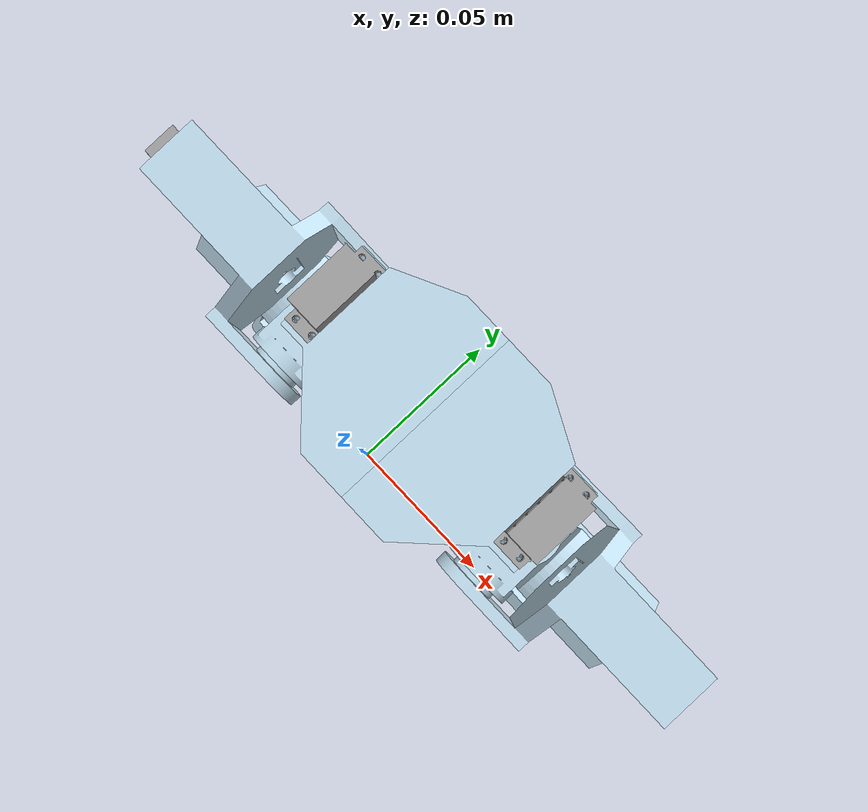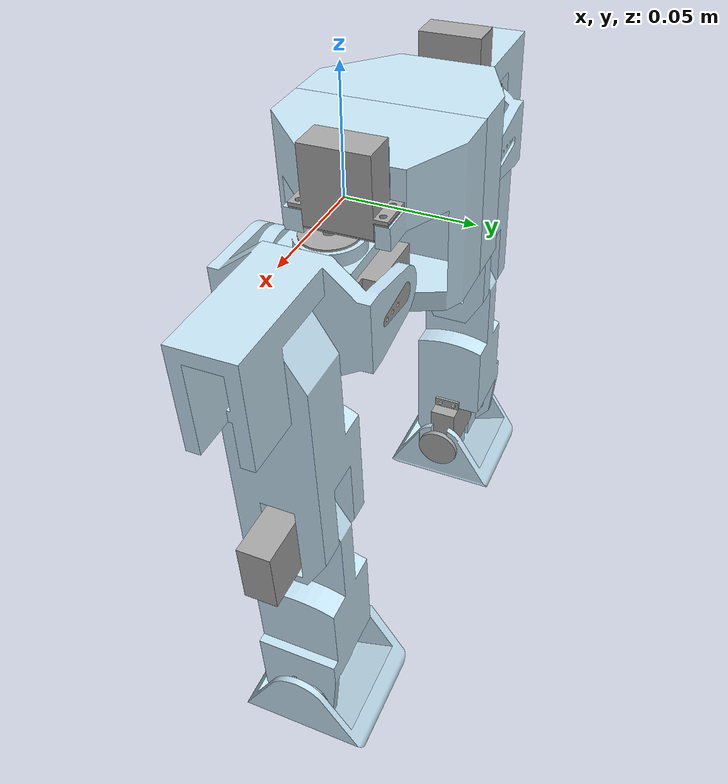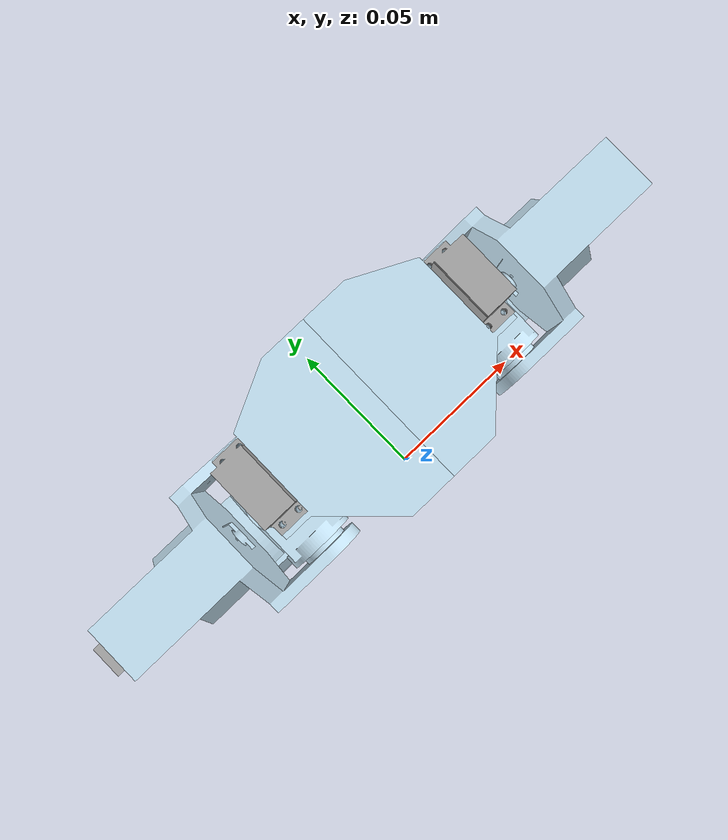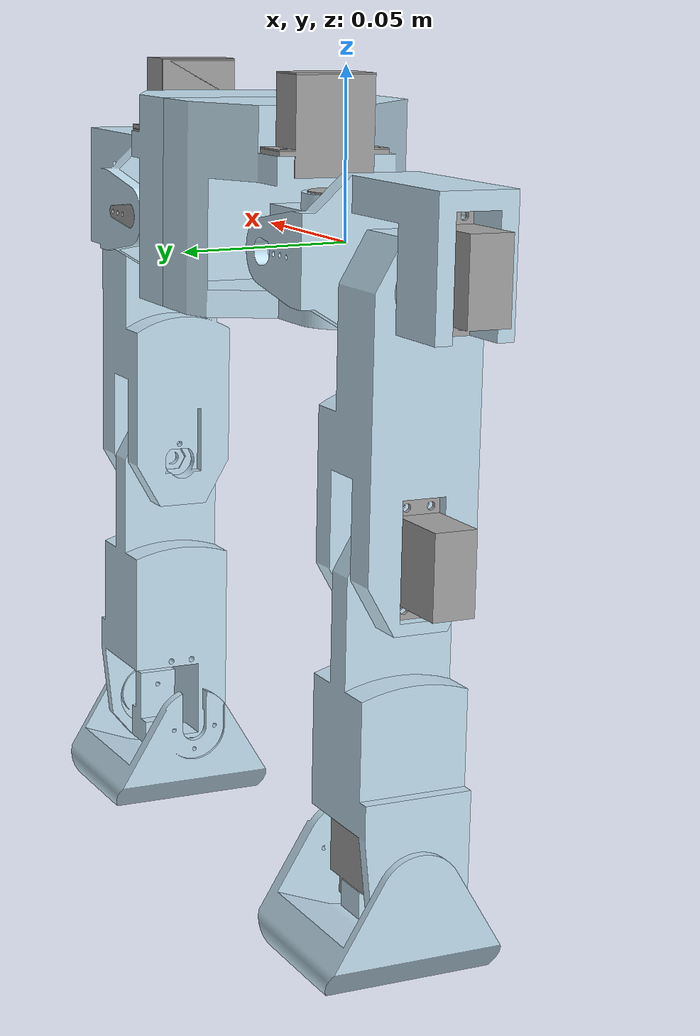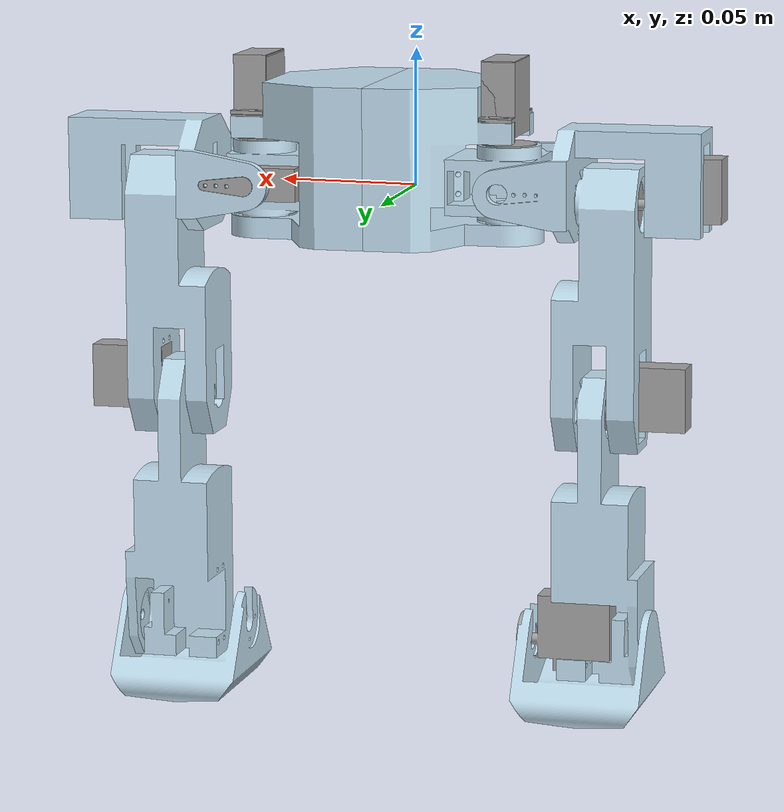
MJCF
<?xml version="1.0" ?>
<!-- Generated using onshape-to-robot -->
<!-- Onshape https://cad.onshape.com/documents/1086eec806492e655aee3d36/w/7ead37efbdf3ca071e6ea4b2/e/281eb8c3a9d8c66f38369e15 -->
<mujoco model="desc">
  <compiler angle="radian" meshdir="assets" autolimits="true"/>
  <default>
    <default class="desc">
      <joint frictionloss="0.1" armature="0.005"/>
      <position kp="50" dampratio="1"/>
      <default class="visual">
        <geom type="mesh" contype="0" conaffinity="0" group="2"/>
      </default>
      <default class="collision">
        <geom group="3"/>
      </default>
    </default>
  </default>
  <worldbody>
    <!-- Link hor_rot_body_joint -->
    <body name="hor_rot_body_joint" pos="0 0 0" quat="1 0 0 0" childclass="desc">
      <freejoint name="hor_rot_body_joint_freejoint"/>
      <inertial pos="0.00593595 0.0210036 0.0166446" mass="0.205" fullinertia="0.000144034 0.000149785 0.000149433 -7.314e-09 5.7349e-08 -1.71145e-06"/>
      <!-- Part hor_rot_body_joint -->
      <geom type="mesh" class="visual" pos="-0.00193299 0.0210422 -0.0160235" quat="0.999928 0.010544 0.00562891 -0.00110178" mesh="hor_rot_body_joint" material="hor_rot_body_joint_material"/>
      <geom type="mesh" class="collision" pos="-0.00193299 0.0210422 -0.0160235" quat="0.999928 0.010544 0.00562891 -0.00110178" mesh="hor_rot_body_joint" material="hor_rot_body_joint_material"/>
      <!-- Part servo_1_mirrored -->
      <geom type="mesh" class="visual" pos="0.0130647 0.0209163 -0.0162947" quat="0.00562891 -0.00110178 -0.999928 -0.010544" mesh="servo_1_mirrored" material="servo_1_mirrored_material"/>
      <geom type="mesh" class="collision" pos="0.0130647 0.0209163 -0.0162947" quat="0.00562891 -0.00110178 -0.999928 -0.010544" mesh="servo_1_mirrored" material="servo_1_mirrored_material"/>
      <!-- Part hor_rot_body_joint_mirrored -->
      <geom type="mesh" class="visual" pos="0.013066 0.0210109 -0.0161927" quat="0.00562891 -0.00110178 -0.999928 -0.010544" mesh="hor_rot_body_joint_mirrored" material="hor_rot_body_joint_mirrored_material"/>
      <geom type="mesh" class="collision" pos="0.013066 0.0210109 -0.0161927" quat="0.00562891 -0.00110178 -0.999928 -0.010544" mesh="hor_rot_body_joint_mirrored" material="hor_rot_body_joint_mirrored_material"/>
      <!-- Part servo_1 -->
      <geom type="mesh" class="visual" pos="-0.00193433 0.0209475 -0.0161255" quat="0.999928 0.010544 0.00562891 -0.00110178" mesh="servo_1" material="servo_1_material"/>
      <geom type="mesh" class="collision" pos="-0.00193433 0.0209475 -0.0161255" quat="0.999928 0.010544 0.00562891 -0.00110178" mesh="servo_1" material="servo_1_material"/>
      <!-- Link lat_hip_rotor -->
      <body name="lat_hip_rotor" pos="0.0511752 0.0201519 0.0157702" quat="0.999928 0.010544 0.00562891 -0.00110178">
        <!-- Joint from hor_rot_body_joint to lat_hip_rotor -->
        <joint axis="0 0 1" name="hip_lat_hip_rot" type="hinge"/>
        <inertial pos="-0.00428697 -0.00382409 -0.0126357" mass="0.0155303" fullinertia="2.37909e-06 2.50246e-06 2.59945e-06 -8.0327e-08 3.5083e-08 3.2124e-08"/>
        <!-- Part lat_hip_rotor -->
        <geom type="mesh" class="visual" pos="-0.0527479 -8.95e-10 -0.0321" quat="1 -0 -0 8.48e-09" mesh="lat_hip_rotor" material="lat_hip_rotor_material"/>
        <geom type="mesh" class="collision" pos="-0.0527479 -8.95e-10 -0.0321" quat="1 -0 -0 8.48e-09" mesh="lat_hip_rotor" material="lat_hip_rotor_material"/>
        <!-- Part servo_2 -->
        <geom type="mesh" class="visual" pos="-0.0527479 -8.95e-10 -0.0321" quat="1 0 -0 8.48e-09" mesh="servo_2" material="servo_2_material"/>
        <geom type="mesh" class="collision" pos="-0.0527479 -8.95e-10 -0.0321" quat="1 0 -0 8.48e-09" mesh="servo_2" material="servo_2_material"/>
        <!-- Part mm_lat_hip_rotor -->
        <geom type="mesh" class="visual" pos="-0.0528345 4.99991e-05 -0.0321" quat="1 -0 -0 8.48e-09" mesh="mm_lat_hip_rotor" material="mm_lat_hip_rotor_material"/>
        <geom type="mesh" class="collision" pos="-0.0528345 4.99991e-05 -0.0321" quat="1 -0 -0 8.48e-09" mesh="mm_lat_hip_rotor" material="mm_lat_hip_rotor_material"/>
        <!-- Link vert_rot_hip -->
        <body name="vert_rot_hip" pos="0.00109071 0.023 -0.0121" quat="0.707107 -0.707107 3.809e-08 5.0083e-08">
          <!-- Joint from lat_hip_rotor to vert_rot_hip -->
          <joint axis="0 0 1" name="lat_hip_rot_vert_hip_rot" type="hinge"/>
          <inertial pos="0.0334167 -0.0052005 -0.0248316" mass="0.0358461" fullinertia="1.1549e-05 2.28216e-05 1.99117e-05 1.71255e-06 -1.85099e-06 3.32353e-07"/>
          <!-- Part mm_vert_rot_hip -->
          <geom type="mesh" class="visual" pos="-0.0538386 0.02 -0.023" quat="0.707107 0.707107 -0 -0" mesh="mm_vert_rot_hip" material="mm_vert_rot_hip_material"/>
          <geom type="mesh" class="collision" pos="-0.0538386 0.02 -0.023" quat="0.707107 0.707107 -0 -0" mesh="mm_vert_rot_hip" material="mm_vert_rot_hip_material"/>
          <!-- Part vert_rot_hip -->
          <geom type="mesh" class="visual" pos="-0.0538386 0.02 -0.023" quat="0.707107 0.707107 -0 0" mesh="vert_rot_hip" material="vert_rot_hip_material"/>
          <geom type="mesh" class="collision" pos="-0.0538386 0.02 -0.023" quat="0.707107 0.707107 -0 0" mesh="vert_rot_hip" material="vert_rot_hip_material"/>
          <!-- Part servo_3 -->
          <geom type="mesh" class="visual" pos="-0.0538386 0.0199038 -0.023" quat="0.707107 0.707107 -0 0" mesh="servo_3" material="servo_3_material"/>
          <geom type="mesh" class="collision" pos="-0.0538386 0.0199038 -0.023" quat="0.707107 0.707107 -0 0" mesh="servo_3" material="servo_3_material"/>
          <!-- Link upper_leg -->
          <body name="upper_leg" pos="0.043 0.0054232 -0.023" quat="0 -0.707107 0 -0.707107">
            <!-- Joint from vert_rot_hip to upper_leg -->
            <joint axis="0 0 1" name="vert_hip_rot_upper_leg" type="hinge"/>
            <inertial pos="-2.65264e-06 -0.034094 -0.00876669" mass="0.0699906" fullinertia="4.88668e-05 1.08625e-05 4.94636e-05 -4.563e-09 -9.7e-11 -2.76551e-06"/>
            <!-- Part mm_upper_leg -->
            <geom type="mesh" class="visual" pos="-0.0124979 -0.00726417 -0.0968386" quat="0.182982 -0.683021 -0.182982 -0.683021" mesh="mm_upper_leg" material="mm_upper_leg_material"/>
            <geom type="mesh" class="collision" pos="-0.0124979 -0.00726417 -0.0968386" quat="0.182982 -0.683021 -0.182982 -0.683021" mesh="mm_upper_leg" material="mm_upper_leg_material"/>
            <!-- Part upper_leg -->
            <geom type="mesh" class="visual" pos="-1.32164e-06 -0.0144806 -0.0968386" quat="0.499977 -0.500023 -0.499977 -0.500023" mesh="upper_leg" material="upper_leg_material"/>
            <geom type="mesh" class="collision" pos="-1.32164e-06 -0.0144806 -0.0968386" quat="0.499977 -0.500023 -0.499977 -0.500023" mesh="upper_leg" material="upper_leg_material"/>
            <!-- Part servo_4 -->
            <geom type="mesh" class="visual" pos="-1.30289e-06 -0.0142752 -0.0968386" quat="0.499977 -0.500023 -0.499977 -0.500023" mesh="servo_4" material="servo_4_material"/>
            <geom type="mesh" class="collision" pos="-1.30289e-06 -0.0142752 -0.0968386" quat="0.499977 -0.500023 -0.499977 -0.500023" mesh="servo_4" material="servo_4_material"/>
            <!-- Link lower_leg -->
            <body name="lower_leg" pos="-6.82649e-06 -0.0747946 -0.012" quat="1 0 0 -4.56349e-05">
              <!-- Joint from upper_leg to lower_leg -->
              <joint axis="0 0 1" name="upper_leg_lower_leg" type="hinge"/>
              <inertial pos="-0.00131472 -0.0494415 0.00184604" mass="0.0690184" fullinertia="4.62636e-05 9.92145e-06 4.72727e-05 -2.78149e-06 -4.954e-08 1.88075e-06"/>
              <!-- Part lower_leg -->
              <geom type="mesh" class="visual" pos="0 0.0605194 -0.0848386" quat="0.5 -0.5 -0.5 -0.5" mesh="lower_leg" material="lower_leg_material"/>
              <geom type="mesh" class="collision" pos="0 0.0605194 -0.0848386" quat="0.5 -0.5 -0.5 -0.5" mesh="lower_leg" material="lower_leg_material"/>
              <!-- Part mm_lower_leg -->
              <geom type="mesh" class="visual" pos="-0.0521082 0.0300847 -0.0847386" quat="0.683013 -0.183013 -0.683013 -0.183013" mesh="mm_lower_leg" material="mm_lower_leg_material"/>
              <geom type="mesh" class="collision" pos="-0.0521082 0.0300847 -0.0847386" quat="0.683013 -0.183013 -0.683013 -0.183013" mesh="mm_lower_leg" material="mm_lower_leg_material"/>
              <!-- Part servo_5 -->
              <geom type="mesh" class="visual" pos="0 0.0605239 -0.0845886" quat="0.5 -0.5 -0.5 -0.5" mesh="servo_5" material="servo_5_material"/>
              <geom type="mesh" class="collision" pos="0 0.0605239 -0.0845886" quat="0.5 -0.5 -0.5 -0.5" mesh="servo_5" material="servo_5_material"/>
              <!-- Link foot -->
              <body name="foot" pos="0 -0.085 0.0175" quat="0 1 -0 0">
                <!-- Joint from lower_leg to foot -->
                <joint axis="0 0 1" name="lower_leg_foot" type="hinge"/>
                <inertial pos="-6.30262e-05 0.016939 0.0187992" mass="0.0355652" fullinertia="8.98359e-06 1.48185e-05 9.36648e-06 -1.0674e-08 -1.227e-09 -1.8862e-07"/>
                <!-- Part foot -->
                <geom type="mesh" class="visual" pos="-0 -0.145519 0.102339" quat="0.5 0.5 0.5 -0.5" mesh="foot" material="foot_material"/>
                <geom type="mesh" class="collision" pos="-0 -0.145519 0.102339" quat="0.5 0.5 0.5 -0.5" mesh="foot" material="foot_material"/>
              </body>
            </body>
          </body>
        </body>
      </body>
      <!-- Link lat_hip_rotor_mirrored -->
      <body name="lat_hip_rotor_mirrored" pos="-0.0393146 0.0203405 0.0167911" quat="0.00562891 -0.00110177 -0.999928 -0.010544">
        <!-- Joint from hor_rot_body_joint to lat_hip_rotor_mirrored -->
        <joint axis="0 0 1" name="r_hip_lat_rot" type="hinge"/>
        <inertial pos="-0.00447435 -0.00399691 0.0122043" mass="0.0148671" fullinertia="2.29632e-06 2.41786e-06 2.56995e-06 -6.9053e-08 -6.94e-09 -6.168e-09"/>
        <!-- Part servo_2_mirrored -->
        <geom type="mesh" class="visual" pos="-0.0527479 0 0.0321" quat="1 0 0 -0" mesh="servo_2_mirrored" material="servo_2_mirrored_material"/>
        <geom type="mesh" class="collision" pos="-0.0527479 0 0.0321" quat="1 0 0 -0" mesh="servo_2_mirrored" material="servo_2_mirrored_material"/>
        <!-- Part lat_hip_rotor_mirrored -->
        <geom type="mesh" class="visual" pos="-0.0527479 0 0.0321" quat="1 0 0 -0" mesh="lat_hip_rotor_mirrored" material="lat_hip_rotor_mirrored_material"/>
        <geom type="mesh" class="collision" pos="-0.0527479 0 0.0321" quat="1 0 0 -0" mesh="lat_hip_rotor_mirrored" material="lat_hip_rotor_mirrored_material"/>
        <!-- Link vert_rot_hip_mirrored -->
        <body name="vert_rot_hip_mirrored" pos="0.00109071 0.025 0.0121" quat="0.707107 -0.707107 4.4087e-08 4.4087e-08">
          <!-- Joint from lat_hip_rotor_mirrored to vert_rot_hip_mirrored -->
          <joint axis="0 0 1" name="r_hip_vert_hip_rot" type="hinge"/>
          <inertial pos="0.0339266 0.00527985 -0.0264822" mass="0.0353074" fullinertia="1.12425e-05 2.19192e-05 1.92796e-05 -1.6175e-06 -1.43257e-06 -2.67236e-07"/>
          <!-- Part servo_1_mirrored_2 -->
          <geom type="mesh" class="visual" pos="0.0105 -0.00551938 -0.0777479" quat="0.707107 0 -0.707107 -0" mesh="servo_1_mirrored" material="servo_1_mirrored_material"/>
          <geom type="mesh" class="collision" pos="0.0105 -0.00551938 -0.0777479" quat="0.707107 0 -0.707107 -0" mesh="servo_1_mirrored" material="servo_1_mirrored_material"/>
          <!-- Part vert_rot_hip_mirrored -->
          <geom type="mesh" class="visual" pos="-0.0538386 -0.02 -0.025" quat="0.707107 0.707107 0 -0" mesh="vert_rot_hip_mirrored" material="vert_rot_hip_mirrored_material"/>
          <geom type="mesh" class="collision" pos="-0.0538386 -0.02 -0.025" quat="0.707107 0.707107 0 -0" mesh="vert_rot_hip_mirrored" material="vert_rot_hip_mirrored_material"/>
          <!-- Link upper_leg_mirrored -->
          <body name="upper_leg_mirrored" pos="0.043 -0.00551938 -0.025" quat="3.22687e-05 -0.707107 3.22687e-05 -0.707107">
            <!-- Joint from vert_rot_hip_mirrored to upper_leg_mirrored -->
            <joint axis="0 0 1" name="r_vert_hip_rot_upper_leg" type="hinge"/>
            <inertial pos="-0 0.0344591 -0.0087149" mass="0.0692485" fullinertia="4.79689e-05 1.08353e-05 4.85853e-05 -0 0 2.88901e-06"/>
            <!-- Part servo_1_mirrored_3 -->
            <geom type="mesh" class="visual" pos="-0.0527479 0.075 -0.04485" quat="0 1 -0 0" mesh="servo_1_mirrored" material="servo_1_mirrored_material"/>
            <geom type="mesh" class="collision" pos="-0.0527479 0.075 -0.04485" quat="0 1 -0 0" mesh="servo_1_mirrored" material="servo_1_mirrored_material"/>
            <!-- Part upper_leg_mirrored -->
            <geom type="mesh" class="visual" pos="0 0.0144806 -0.0968386" quat="0.5 -0.5 -0.5 -0.5" mesh="upper_leg_mirrored" material="upper_leg_mirrored_material"/>
            <geom type="mesh" class="collision" pos="0 0.0144806 -0.0968386" quat="0.5 -0.5 -0.5 -0.5" mesh="upper_leg_mirrored" material="upper_leg_mirrored_material"/>
            <!-- Link lower_leg_mirrored -->
            <body name="lower_leg_mirrored" pos="0 0.075 -0.01235" quat="1 -0 0 0">
              <!-- Joint from upper_leg_mirrored to lower_leg_mirrored -->
              <joint axis="0 0 1" name="r_upper_leg_lower_leg" type="hinge"/>
              <inertial pos="-0.0013205 0.0496176 0.00186147" mass="0.0687726" fullinertia="4.56586e-05 9.91473e-06 4.66713e-05 2.76183e-06 -5.1263e-08 -1.82827e-06"/>
              <!-- Part servo_1_mirrored_4 -->
              <geom type="mesh" class="visual" pos="-0.0527479 0.085 -0.0595" quat="0 -1 0 -0" mesh="servo_1_mirrored" material="servo_1_mirrored_material"/>
              <geom type="mesh" class="collision" pos="-0.0527479 0.085 -0.0595" quat="0 -1 0 -0" mesh="servo_1_mirrored" material="servo_1_mirrored_material"/>
              <!-- Part lower_leg_mirrored -->
              <geom type="mesh" class="visual" pos="0 -0.0605194 -0.0848386" quat="0.5 -0.5 -0.5 -0.5" mesh="lower_leg_mirrored" material="lower_leg_mirrored_material"/>
              <geom type="mesh" class="collision" pos="0 -0.0605194 -0.0848386" quat="0.5 -0.5 -0.5 -0.5" mesh="lower_leg_mirrored" material="lower_leg_mirrored_material"/>
              <!-- Link foot_mirrored -->
              <body name="foot_mirrored" pos="0 0.085 -0.025" quat="0 1 0 0">
                <!-- Joint from lower_leg_mirrored to foot_mirrored -->
                <joint axis="0 0 1" name="r_lower_leg_r_foot" type="hinge"/>
                <inertial pos="-6.30268e-05 -0.0168866 -0.0227008" mass="0.0355652" fullinertia="8.98359e-06 1.48185e-05 9.36648e-06 1.0676e-08 -1.235e-09 1.8862e-07"/>
                <!-- Part foot_mirrored -->
                <geom type="mesh" class="visual" pos="-0 0.145572 0.0608386" quat="0.5 0.5 0.5 -0.5" mesh="foot_mirrored" material="foot_mirrored_material"/>
                <geom type="mesh" class="collision" pos="-0 0.145572 0.0608386" quat="0.5 0.5 0.5 -0.5" mesh="foot_mirrored" material="foot_mirrored_material"/>
              </body>
            </body>
          </body>
        </body>
      </body>
    </body>
  </worldbody>
  <asset>
    <mesh file="vert_rot_hip_mirrored.stl"/>
    <mesh file="mm_lower_leg.stl"/>
    <mesh file="foot.stl"/>
    <mesh file="servo_1_mirrored.stl"/>
    <mesh file="servo_4.stl"/>
    <mesh file="servo_1.stl"/>
    <mesh file="vert_rot_hip.stl"/>
    <mesh file="servo_5.stl"/>
    <mesh file="servo_2_mirrored.stl"/>
    <mesh file="hor_rot_body_joint.stl"/>
    <mesh file="lat_hip_rotor_mirrored.stl"/>
    <mesh file="mm_vert_rot_hip.stl"/>
    <mesh file="lower_leg_mirrored.stl"/>
    <mesh file="mm_upper_leg.stl"/>
    <mesh file="hor_rot_body_joint_mirrored.stl"/>
    <mesh file="lower_leg.stl"/>
    <mesh file="foot_mirrored.stl"/>
    <mesh file="servo_2.stl"/>
    <mesh file="upper_leg_mirrored.stl"/>
    <mesh file="servo_3.stl"/>
    <mesh file="upper_leg.stl"/>
    <mesh file="lat_hip_rotor.stl"/>
    <mesh file="mm_lat_hip_rotor.stl"/>
    <material name="hor_rot_body_joint_material" rgba="0.768627 0.886275 0.952941 1"/>
    <material name="servo_1_mirrored_material" rgba="0.647059 0.647059 0.647059 1"/>
    <material name="hor_rot_body_joint_mirrored_material" rgba="0.768627 0.886275 0.952941 1"/>
    <material name="servo_1_material" rgba="0.647059 0.647059 0.647059 1"/>
    <material name="lat_hip_rotor_material" rgba="0.768627 0.886275 0.952941 1"/>
    <material name="servo_2_material" rgba="0.647059 0.647059 0.647059 1"/>
    <material name="mm_lat_hip_rotor_material" rgba="0.768627 0.886275 0.952941 1"/>
    <material name="mm_vert_rot_hip_material" rgba="0.768627 0.886275 0.952941 1"/>
    <material name="vert_rot_hip_material" rgba="0.768627 0.886275 0.952941 1"/>
    <material name="servo_3_material" rgba="0.647059 0.647059 0.647059 1"/>
    <material name="mm_upper_leg_material" rgba="0.768627 0.886275 0.952941 1"/>
    <material name="upper_leg_material" rgba="0.768627 0.886275 0.952941 1"/>
    <material name="servo_4_material" rgba="0.647059 0.647059 0.647059 1"/>
    <material name="lower_leg_material" rgba="0.768627 0.886275 0.952941 1"/>
    <material name="mm_lower_leg_material" rgba="0.768627 0.886275 0.952941 1"/>
    <material name="servo_5_material" rgba="0.647059 0.647059 0.647059 1"/>
    <material name="foot_material" rgba="0.768627 0.886275 0.952941 1"/>
    <material name="servo_2_mirrored_material" rgba="0.647059 0.647059 0.647059 1"/>
    <material name="lat_hip_rotor_mirrored_material" rgba="0.768627 0.886275 0.952941 1"/>
    <material name="vert_rot_hip_mirrored_material" rgba="0.768627 0.886275 0.952941 1"/>
    <material name="upper_leg_mirrored_material" rgba="0.768627 0.886275 0.952941 1"/>
    <material name="lower_leg_mirrored_material" rgba="0.768627 0.886275 0.952941 1"/>
    <material name="foot_mirrored_material" rgba="0.768627 0.886275 0.952941 1"/>
  </asset>
  <actuator>
    <position class="desc" name="hip_lat_hip_rot" joint="hip_lat_hip_rot"/>
    <position class="desc" name="lat_hip_rot_vert_hip_rot" joint="lat_hip_rot_vert_hip_rot"/>
    <position class="desc" name="vert_hip_rot_upper_leg" joint="vert_hip_rot_upper_leg"/>
    <position class="desc" name="upper_leg_lower_leg" joint="upper_leg_lower_leg"/>
    <position class="desc" name="lower_leg_foot" joint="lower_leg_foot"/>
    <position class="desc" name="r_hip_lat_rot" joint="r_hip_lat_rot"/>
    <position class="desc" name="r_hip_vert_hip_rot" joint="r_hip_vert_hip_rot"/>
    <position class="desc" name="r_vert_hip_rot_upper_leg" joint="r_vert_hip_rot_upper_leg"/>
    <position class="desc" name="r_upper_leg_lower_leg" joint="r_upper_leg_lower_leg"/>
    <position class="desc" name="r_lower_leg_r_foot" joint="r_lower_leg_r_foot"/>
  </actuator>
  <equality/>
</mujoco>
